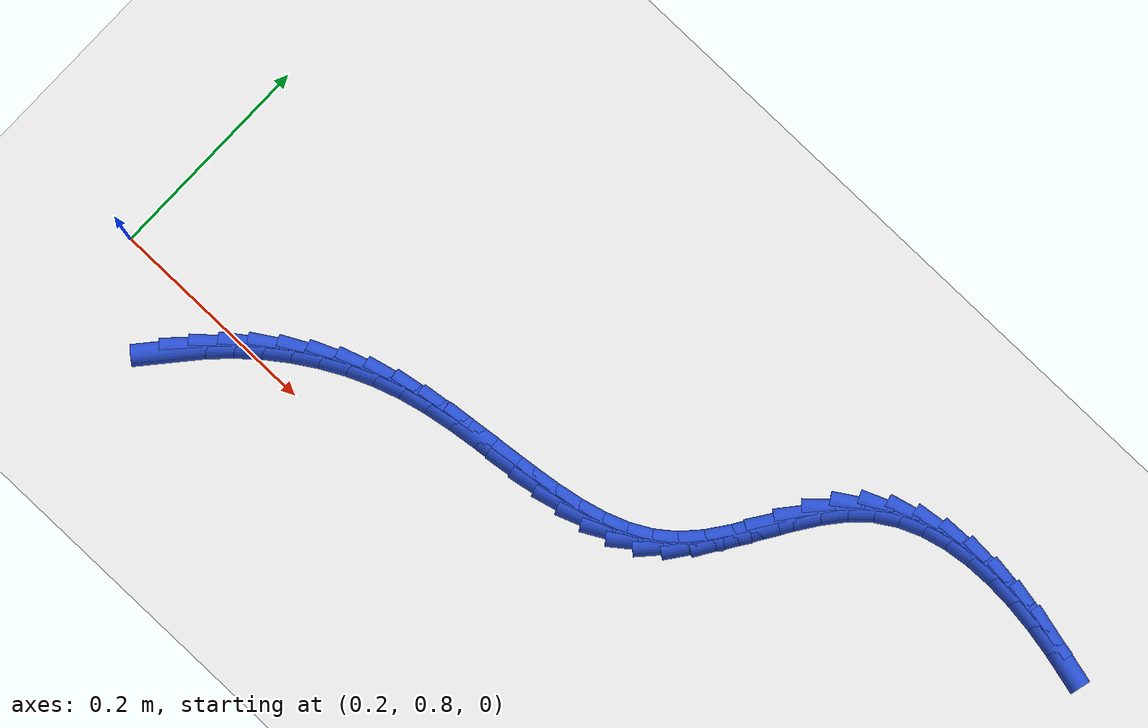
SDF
<sdf version="1.6">
 <world name="default">
  <model name="ground_plane">
   <static>1</static>
   <link name="link">
    <collision name="collision">
     <geometry><plane><normal>0 0 1</normal><size>100 100</size></plane></geometry>
     <surface><friction><ode><mu>100</mu><mu2>50</mu2></ode></friction></surface>
    </collision>
    <visual name="visual">
     <cast_shadows>0</cast_shadows>
     <geometry><plane><normal>0 0 1</normal><size>100 100</size></plane></geometry>
     <material>
      <script><uri>file://media/materials/scripts/gazebo.material</uri><name>Gazebo/WhiteGlow</name></script>
     </material>
    </visual>
   </link>
  </model>
  <model name="line">
   <link name="link_33">
    <pose>0.29834261948950414 0.7563515899286132 0.01 0 1.57 0.863908384403866</pose>
    <collision name="collision">
     <geometry><cylinder><radius>0.01</radius><length>0.08</length></cylinder></geometry>
    </collision>
    <visual name="visual">
     <material>
      <script><name>Gazebo/Blue</name><uri>file://media/materials/scripts/gazebo.material</uri></script>
     </material>
     <geometry><cylinder><radius>0.01</radius><length>0.08</length></cylinder></geometry>
    </visual>
   </link>
   <link name="link_34">
    <pose>0.31474350848996974 0.7755534129334037 0.01 0 1.57 0.7900186222673263</pose>
    <collision name="collision">
     <geometry><cylinder><radius>0.01</radius><length>0.08</length></cylinder></geometry>
    </collision>
    <visual name="visual">
     <material>
      <script><name>Gazebo/Blue</name><uri>file://media/materials/scripts/gazebo.material</uri></script>
     </material>
     <geometry><cylinder><radius>0.01</radius><length>0.08</length></cylinder></geometry>
    </visual>
   </link>
   <link name="link_35">
    <pose>0.33260297974181097 0.793578689365883 0.01 0 1.57 0.715653173320533</pose>
    <collision name="collision">
     <geometry><cylinder><radius>0.01</radius><length>0.08</length></cylinder></geometry>
    </collision>
    <visual name="visual">
     <material>
      <script><name>Gazebo/Blue</name><uri>file://media/materials/scripts/gazebo.material</uri></script>
     </material>
     <geometry><cylinder><radius>0.01</radius><length>0.08</length></cylinder></geometry>
    </visual>
   </link>
   <link name="link_36">
    <pose>0.35183544342665624 0.8102995172616478 0.01 0 1.57 0.6403303066077641</pose>
    <collision name="collision">
     <geometry><cylinder><radius>0.01</radius><length>0.08</length></cylinder></geometry>
    </collision>
    <visual name="visual">
     <material>
      <script><name>Gazebo/Blue</name><uri>file://media/materials/scripts/gazebo.material</uri></script>
     </material>
     <geometry><cylinder><radius>0.01</radius><length>0.08</length></cylinder></geometry>
    </visual>
   </link>
   <link name="link_37">
    <pose>0.37235530972613334 0.8255879946562947 0.01 0 1.57 0.5636212650688873</pose>
    <collision name="collision">
     <geometry><cylinder><radius>0.01</radius><length>0.08</length></cylinder></geometry>
    </collision>
    <visual name="visual">
     <material>
      <script><name>Gazebo/Blue</name><uri>file://media/materials/scripts/gazebo.material</uri></script>
     </material>
     <geometry><cylinder><radius>0.01</radius><length>0.08</length></cylinder></geometry>
    </visual>
   </link>
   <link name="link_38">
    <pose>0.3940769888218705 0.8393162195854211 0.01 0 1.57 0.48516763553434245</pose>
    <collision name="collision">
     <geometry><cylinder><radius>0.01</radius><length>0.08</length></cylinder></geometry>
    </collision>
    <visual name="visual">
     <material>
      <script><name>Gazebo/Blue</name><uri>file://media/materials/scripts/gazebo.material</uri></script>
     </material>
     <geometry><cylinder><radius>0.01</radius><length>0.08</length></cylinder></geometry>
    </visual>
   </link>
   <link name="link_39">
    <pose>0.41691489089549566 0.8513562900846238 0.01 0 1.57 0.4047021194049791</pose>
    <collision name="collision">
     <geometry><cylinder><radius>0.01</radius><length>0.08</length></cylinder></geometry>
    </collision>
    <visual name="visual">
     <material>
      <script><name>Gazebo/Blue</name><uri>file://media/materials/scripts/gazebo.material</uri></script>
     </material>
     <geometry><cylinder><radius>0.01</radius><length>0.08</length></cylinder></geometry>
    </visual>
   </link>
   <link name="link_40">
    <pose>0.44078342612863686 0.8615803041894994 0.01 0 1.57 0.3220719810025077</pose>
    <collision name="collision">
     <geometry><cylinder><radius>0.01</radius><length>0.08</length></cylinder></geometry>
    </collision>
    <visual name="visual">
     <material>
      <script><name>Gazebo/Blue</name><uri>file://media/materials/scripts/gazebo.material</uri></script>
     </material>
     <geometry><cylinder><radius>0.01</radius><length>0.08</length></cylinder></geometry>
    </visual>
   </link>
   <link name="link_41">
    <pose>0.4655970047029224 0.8698603599356453 0.01 0 1.57 0.2394755983449123</pose>
    <collision name="collision">
     <geometry><cylinder><radius>0.01</radius><length>0.08</length></cylinder></geometry>
    </collision>
    <visual name="visual">
     <material>
      <script><name>Gazebo/Blue</name><uri>file://media/materials/scripts/gazebo.material</uri></script>
     </material>
     <geometry><cylinder><radius>0.01</radius><length>0.08</length></cylinder></geometry>
    </visual>
   </link>
   <link name="link_42">
    <pose>0.49125258380330555 0.8761244509600482 0.01 0 1.57 0.1733927424901768</pose>
    <collision name="collision">
     <geometry><cylinder><radius>0.01</radius><length>0.08</length></cylinder></geometry>
    </collision>
    <visual name="visual">
     <material>
      <script><name>Gazebo/Blue</name><uri>file://media/materials/scripts/gazebo.material</uri></script>
     </material>
     <geometry><cylinder><radius>0.01</radius><length>0.08</length></cylinder></geometry>
    </visual>
   </link>
   <link name="link_43">
    <pose>0.51751480769111 0.8807243210771437 0.01 0 1.57 0.1302774589940562</pose>
    <collision name="collision">
     <geometry><cylinder><radius>0.01</radius><length>0.08</length></cylinder></geometry>
    </collision>
    <visual name="visual">
     <material>
      <script><name>Gazebo/Blue</name><uri>file://media/materials/scripts/gazebo.material</uri></script>
     </material>
     <geometry><cylinder><radius>0.01</radius><length>0.08</length></cylinder></geometry>
    </visual>
   </link>
   <link name="link_44">
    <pose>0.5440876913001884 0.8842058877887901 0.01 0 1.57 0.10902416511089205</pose>
    <collision name="collision">
     <geometry><cylinder><radius>0.01</radius><length>0.08</length></cylinder></geometry>
    </collision>
    <visual name="visual">
     <material>
      <script><name>Gazebo/Blue</name><uri>file://media/materials/scripts/gazebo.material</uri></script>
     </material>
     <geometry><cylinder><radius>0.01</radius><length>0.08</length></cylinder></geometry>
    </visual>
   </link>
   <link name="link_45">
    <pose>0.5706749339762863 0.8871160793107825 0.01 0 1.57 0.10926509526614214</pose>
    <collision name="collision">
     <geometry><cylinder><radius>0.01</radius><length>0.08</length></cylinder></geometry>
    </collision>
    <visual name="visual">
     <material>
      <script><name>Gazebo/Blue</name><uri>file://media/materials/scripts/gazebo.material</uri></script>
     </material>
     <geometry><cylinder><radius>0.01</radius><length>0.08</length></cylinder></geometry>
    </visual>
   </link>
   <link name="link_46">
    <pose>0.5969802350651494 0.8900018238589151 0.01 0 1.57 0.13170938318355405</pose>
    <collision name="collision">
     <geometry><cylinder><radius>0.01</radius><length>0.08</length></cylinder></geometry>
    </collision>
    <visual name="visual">
     <material>
      <script><name>Gazebo/Blue</name><uri>file://media/materials/scripts/gazebo.material</uri></script>
     </material>
     <geometry><cylinder><radius>0.01</radius><length>0.08</length></cylinder></geometry>
    </visual>
   </link>
   <link name="link_47">
    <pose>0.6227072939125249 0.8934100496489844 0.01 0 1.57 0.1782559398895576</pose>
    <collision name="collision">
     <geometry><cylinder><radius>0.01</radius><length>0.08</length></cylinder></geometry>
    </collision>
    <visual name="visual">
     <material>
      <script><name>Gazebo/Blue</name><uri>file://media/materials/scripts/gazebo.material</uri></script>
     </material>
     <geometry><cylinder><radius>0.01</radius><length>0.08</length></cylinder></geometry>
    </visual>
   </link>
   <link name="link_48">
    <pose>0.6475598098641581 0.8978876848967847 0.01 0 1.57 0.2518642389104652</pose>
    <collision name="collision">
     <geometry><cylinder><radius>0.01</radius><length>0.08</length></cylinder></geometry>
    </collision>
    <visual name="visual">
     <material>
      <script><name>Gazebo/Blue</name><uri>file://media/materials/scripts/gazebo.material</uri></script>
     </material>
     <geometry><cylinder><radius>0.01</radius><length>0.08</length></cylinder></geometry>
    </visual>
   </link>
   <link name="link_49">
    <pose>0.6712414822657947 0.9039816578181111 0.01 0 1.57 0.35587828829496043</pose>
    <collision name="collision">
     <geometry><cylinder><radius>0.01</radius><length>0.08</length></cylinder></geometry>
    </collision>
    <visual name="visual">
     <material>
      <script><name>Gazebo/Blue</name><uri>file://media/materials/scripts/gazebo.material</uri></script>
     </material>
     <geometry><cylinder><radius>0.01</radius><length>0.08</length></cylinder></geometry>
    </visual>
   </link>
   <link name="link_50">
    <pose>0.6934560104631813 0.9122388966287589 0.01 0 1.57 0.4922458240336488</pose>
    <collision name="collision">
     <geometry><cylinder><radius>0.01</radius><length>0.08</length></cylinder></geometry>
    </collision>
    <visual name="visual">
     <material>
      <script><name>Gazebo/Blue</name><uri>file://media/materials/scripts/gazebo.material</uri></script>
     </material>
     <geometry><cylinder><radius>0.01</radius><length>0.08</length></cylinder></geometry>
    </visual>
   </link>
   <link name="link_51">
    <pose>0.7139070938020636 0.9232063295445232 0.01 0 1.57 0.6583331237046401</pose>
    <collision name="collision">
     <geometry><cylinder><radius>0.01</radius><length>0.08</length></cylinder></geometry>
    </collision>
    <visual name="visual">
     <material>
      <script><name>Gazebo/Blue</name><uri>file://media/materials/scripts/gazebo.material</uri></script>
     </material>
     <geometry><cylinder><radius>0.01</radius><length>0.08</length></cylinder></geometry>
    </visual>
   </link>
   <link name="link_52">
    <pose>0.7322984339376766 0.9374308809552352 0.01 0 1.57 0.8297041908526335</pose>
    <collision name="collision">
     <geometry><cylinder><radius>0.01</radius><length>0.08</length></cylinder></geometry>
    </collision>
    <visual name="visual">
     <material>
      <script><name>Gazebo/Blue</name><uri>file://media/materials/scripts/gazebo.material</uri></script>
     </material>
     <geometry><cylinder><radius>0.01</radius><length>0.08</length></cylinder></geometry>
    </visual>
   </link>
   <link name="link_53">
    <pose>0.748517583552592 0.955154902470993 0.01 0 1.57 0.9474010024520524</pose>
    <collision name="collision">
     <geometry><cylinder><radius>0.01</radius><length>0.08</length></cylinder></geometry>
    </collision>
    <visual name="visual">
     <material>
      <script><name>Gazebo/Blue</name><uri>file://media/materials/scripts/gazebo.material</uri></script>
     </material>
     <geometry><cylinder><radius>0.01</radius><length>0.08</length></cylinder></geometry>
    </visual>
   </link>
   <link name="link_54">
    <pose>0.7631368565161908 0.9754863510719597 0.01 0 1.57 1.0076916436943326</pose>
    <collision name="collision">
     <geometry><cylinder><radius>0.01</radius><length>0.08</length></cylinder></geometry>
    </collision>
    <visual name="visual">
     <material>
      <script><name>Gazebo/Blue</name><uri>file://media/materials/scripts/gazebo.material</uri></script>
     </material>
     <geometry><cylinder><radius>0.01</radius><length>0.08</length></cylinder></geometry>
    </visual>
   </link>
   <link name="link_55">
    <pose>0.7768879569372612 0.9972691333874147 0.01 0 1.57 1.0182168545617885</pose>
    <collision name="collision">
     <geometry><cylinder><radius>0.01</radius><length>0.08</length></cylinder></geometry>
    </collision>
    <visual name="visual">
     <material>
      <script><name>Gazebo/Blue</name><uri>file://media/materials/scripts/gazebo.material</uri></script>
     </material>
     <geometry><cylinder><radius>0.01</radius><length>0.08</length></cylinder></geometry>
    </visual>
   </link>
   <link name="link_56">
    <pose>0.7905025889245912 1.0193471560466383 0.01 0 1.57 0.9806729369856424</pose>
    <collision name="collision">
     <geometry><cylinder><radius>0.01</radius><length>0.08</length></cylinder></geometry>
    </collision>
    <visual name="visual">
     <material>
      <script><name>Gazebo/Blue</name><uri>file://media/materials/scripts/gazebo.material</uri></script>
     </material>
     <geometry><cylinder><radius>0.01</radius><length>0.08</length></cylinder></geometry>
    </visual>
   </link>
   <link name="link_57">
    <pose>0.8047124565869689 1.0405643256789099 0.01 0 1.57 0.8904711648474194</pose>
    <collision name="collision">
     <geometry><cylinder><radius>0.01</radius><length>0.08</length></cylinder></geometry>
    </collision>
    <visual name="visual">
     <material>
      <script><name>Gazebo/Blue</name><uri>file://media/materials/scripts/gazebo.material</uri></script>
     </material>
     <geometry><cylinder><radius>0.01</radius><length>0.08</length></cylinder></geometry>
    </visual>
   </link>
   <link name="link_58">
    <pose>0.8202492640331822 1.0597645489135092 0.01 0 1.57 0.7402906083962236</pose>
    <collision name="collision">
     <geometry><cylinder><radius>0.01</radius><length>0.08</length></cylinder></geometry>
    </collision>
    <visual name="visual">
     <material>
      <script><name>Gazebo/Blue</name><uri>file://media/materials/scripts/gazebo.material</uri></script>
     </material>
     <geometry><cylinder><radius>0.01</radius><length>0.08</length></cylinder></geometry>
    </visual>
   </link>
   <link name="link_59">
    <pose>0.8378237053422839 1.0758209551977098 0.01 0 1.57 0.5612397379594953</pose>
    <collision name="collision">
     <geometry><cylinder><radius>0.01</radius><length>0.08</length></cylinder></geometry>
    </collision>
    <visual name="visual">
     <material>
      <script><name>Gazebo/Blue</name><uri>file://media/materials/scripts/gazebo.material</uri></script>
     </material>
     <geometry><cylinder><radius>0.01</radius><length>0.08</length></cylinder></geometry>
    </visual>
   </link>
   <link name="link_60">
    <pose>0.8576558977343933 1.0882890165761303 0.01 0 1.57 0.3960996355462212</pose>
    <collision name="collision">
     <geometry><cylinder><radius>0.01</radius><length>0.08</length></cylinder></geometry>
    </collision>
    <visual name="visual">
     <material>
      <script><name>Gazebo/Blue</name><uri>file://media/materials/scripts/gazebo.material</uri></script>
     </material>
     <geometry><cylinder><radius>0.01</radius><length>0.08</length></cylinder></geometry>
    </visual>
   </link>
   <link name="link_61">
    <pose>0.8794712653191094 1.09741227297873 0.01 0 1.57 0.2520472753981292</pose>
    <collision name="collision">
     <geometry><cylinder><radius>0.01</radius><length>0.08</length></cylinder></geometry>
    </collision>
    <visual name="visual">
     <material>
      <script><name>Gazebo/Blue</name><uri>file://media/materials/scripts/gazebo.material</uri></script>
     </material>
     <geometry><cylinder><radius>0.01</radius><length>0.08</length></cylinder></geometry>
    </visual>
   </link>
   <link name="link_62">
    <pose>0.9029733989079586 1.1034646322361195 0.01 0 1.57 0.1300392015710237</pose>
    <collision name="collision">
     <geometry><cylinder><radius>0.01</radius><length>0.08</length></cylinder></geometry>
    </collision>
    <visual name="visual">
     <material>
      <script><name>Gazebo/Blue</name><uri>file://media/materials/scripts/gazebo.material</uri></script>
     </material>
     <geometry><cylinder><radius>0.01</radius><length>0.08</length></cylinder></geometry>
    </visual>
   </link>
   <link name="link_63">
    <pose>0.9278658893124679 1.1067200021789112 0.01 0 1.57 0.028172184098085695</pose>
    <collision name="collision">
     <geometry><cylinder><radius>0.01</radius><length>0.08</length></cylinder></geometry>
    </collision>
    <visual name="visual">
     <material>
      <script><name>Gazebo/Blue</name><uri>file://media/materials/scripts/gazebo.material</uri></script>
     </material>
     <geometry><cylinder><radius>0.01</radius><length>0.08</length></cylinder></geometry>
    </visual>
   </link>
   <link name="link_64">
    <pose>0.9538523273441644 1.1074522906377164 0.01 0 1.57 -0.05657362152343595</pose>
    <collision name="collision">
     <geometry><cylinder><radius>0.01</radius><length>0.08</length></cylinder></geometry>
    </collision>
    <visual name="visual">
     <material>
      <script><name>Gazebo/Blue</name><uri>file://media/materials/scripts/gazebo.material</uri></script>
     </material>
     <geometry><cylinder><radius>0.01</radius><length>0.08</length></cylinder></geometry>
    </visual>
   </link>
   <link name="link_65">
    <pose>0.9806363038145751 1.1059354054431472 0.01 0 1.57 -0.1272953910247561</pose>
    <collision name="collision">
     <geometry><cylinder><radius>0.01</radius><length>0.08</length></cylinder></geometry>
    </collision>
    <visual name="visual">
     <material>
      <script><name>Gazebo/Blue</name><uri>file://media/materials/scripts/gazebo.material</uri></script>
     </material>
     <geometry><cylinder><radius>0.01</radius><length>0.08</length></cylinder></geometry>
    </visual>
   </link>
   <link name="link_66">
    <pose>1.007921409535227 1.1024432544258158 0.01 0 1.57 -0.18672397546534408</pose>
    <collision name="collision">
     <geometry><cylinder><radius>0.01</radius><length>0.08</length></cylinder></geometry>
    </collision>
    <visual name="visual">
     <material>
      <script><name>Gazebo/Blue</name><uri>file://media/materials/scripts/gazebo.material</uri></script>
     </material>
     <geometry><cylinder><radius>0.01</radius><length>0.08</length></cylinder></geometry>
    </visual>
   </link>
   <link name="link_67">
    <pose>1.0354112353176461 1.097249745416333 0.01 0 1.57 -0.23711140964221325</pose>
    <collision name="collision">
     <geometry><cylinder><radius>0.01</radius><length>0.08</length></cylinder></geometry>
    </collision>
    <visual name="visual">
     <material>
      <script><name>Gazebo/Blue</name><uri>file://media/materials/scripts/gazebo.material</uri></script>
     </material>
     <geometry><cylinder><radius>0.01</radius><length>0.08</length></cylinder></geometry>
    </visual>
   </link>
  </model>
 </world>
</sdf>
